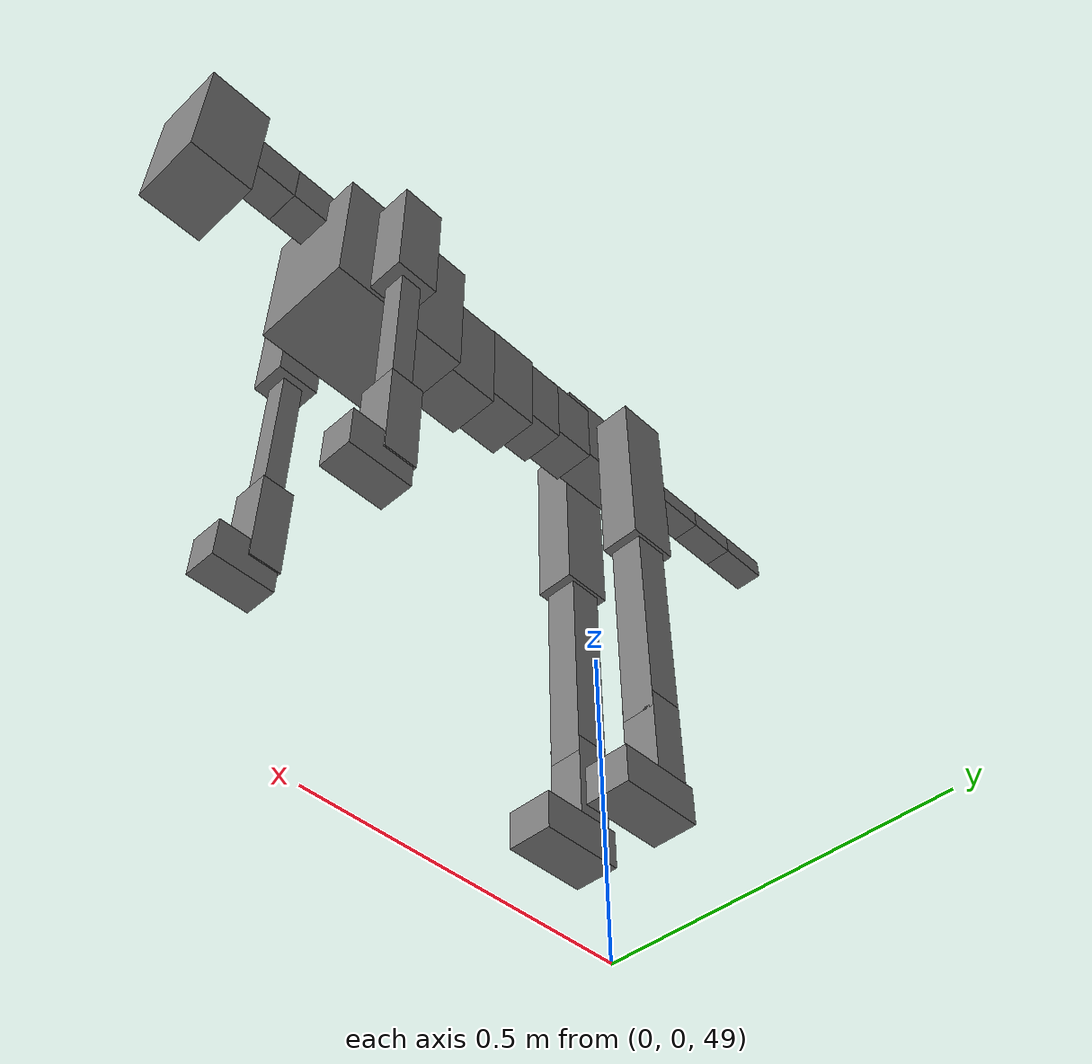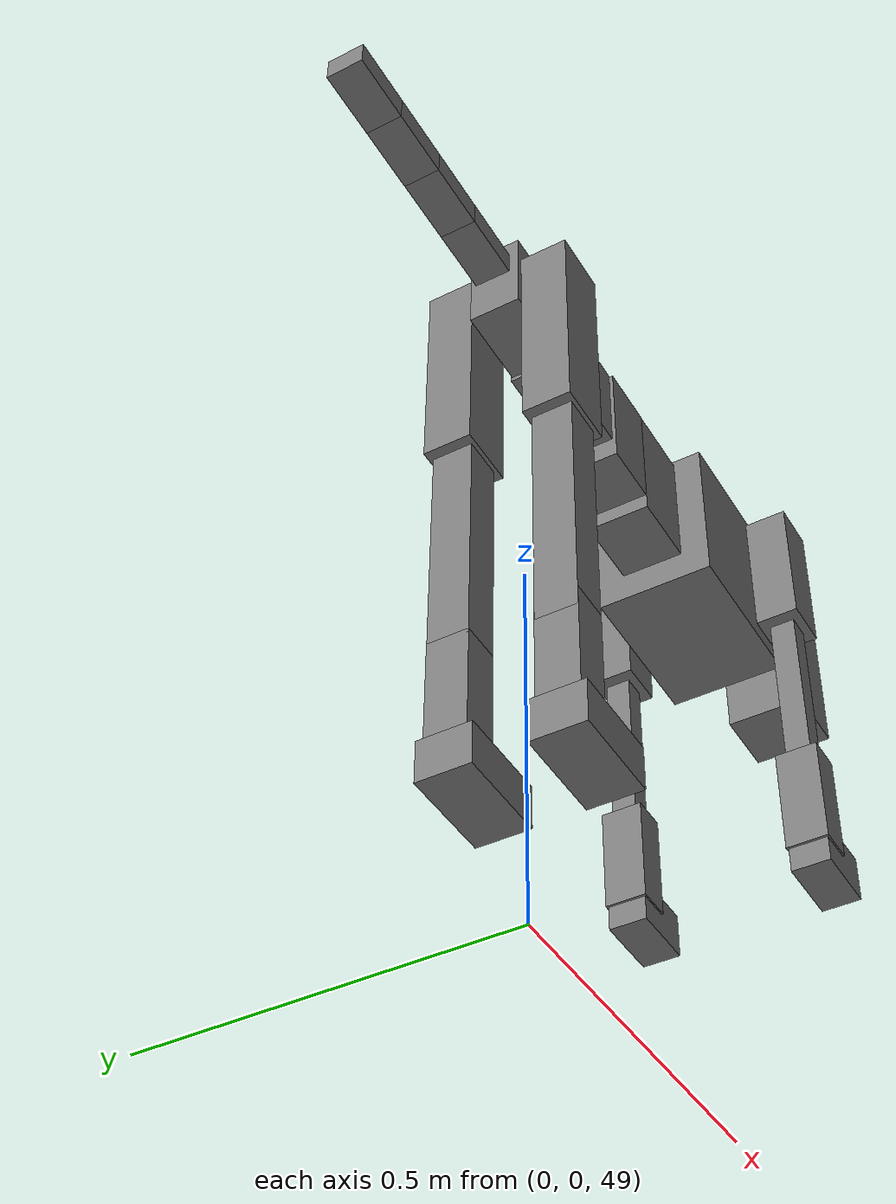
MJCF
<mujoco model="dog">

    <default>
        <joint armature="0.02" stiffness="1" damping="0.2" limited="true"/>
        <geom condim="3" friction="1 0.05 0.05" margin="0.01"/>
        <motor ctrllimited="true" ctrlrange="-1.0 1.0" forcelimited="true" gear="50"/>
    </default>

    <compiler inertiafromgeom="true" angle="radian"/>

    <option timestep="0.016" iterations="50" tolerance="1e-10" solver="Newton" jacobian="dense" cone="pyramidal"/>

    <size nconmax="20000" njmax="60000" nstack="5000000"/>
    <visual>
        <map force="0.1" zfar="30"/>
        <rgba haze="0.15 0.25 0.35 1"/>
        <quality shadowsize="2048"/>
        <global offwidth="800" offheight="800"/>
    </visual>

    <asset>
        <texture type="skybox" builtin="gradient" rgb1="0.3 0.5 0.7" rgb2="0 0 0" width="512" height="512"/>
        <texture name="texplane" type="2d" builtin="checker" rgb1=".2 .3 .4" rgb2=".1 0.15 0.2" width="512" height="512"
                 mark="cross" markrgb=".8 .8 .8"/>
        <texture name="texgeom" type="cube" builtin="flat" mark="cross" width="127" height="1278" rgb1="0.8 0.6 0.4"
                 rgb2="0.8 0.6 0.4" markrgb="1 1 1" random="0.01"/>

        <material name="matplane" reflectance="0.3" texture="texplane" texrepeat="1 1" texuniform="true"/>
        <material name="matgeom" texture="texgeom" texuniform="true" rgba="0.8 0.6 .4 1"/>
    </asset>

    <worldbody>
        <geom name="floor" pos="0 0 0" size="0 0 .25" type="plane" material="matplane" condim="3"/>

        <light directional="false" diffuse=".2 .2 .2" specular="0 0 0" pos="0 0 5" dir="0 0 -1" castshadow="false"/>
        <light mode="targetbodycom" target="torso" directional="false" diffuse=".8 .8 .8" specular="0.3 0.3 0.3"
               pos="0 0 4.0" dir="0 0 -1"/>

        <body name="root" pos="0 0 50">
            <freejoint name="root_1"/>
            <geom type="box" pos="0 0 -0.02" size="0.0774  0.0358  0.063" density="2030"/>

            <body name="spine1" pos="0.054 0 0">
                <joint name="spine1_y" axis="0 1 0" range="0 0.7" limited="true"/>
                <geom type="box" pos="0.02375 0 -0.03" size="0.04375  0.0375  0.05985" density="2030"/>

                <body name="spine2" pos="0.0612 0 0">
                    <joint name="spine2_y" axis="0 1 0" range="-0.15 0.15" limited="true"/>
                    <geom type="box" pos="0.03555  0  -0.04" size="0.04055  0.039  0.06615" density="2030"/>

                    <body name="spine3" pos="0.0730 0 0">
                        <joint name="spine3_y" axis="0 1 0" range="-0.15 0.15" limited="true"/>
                        <geom type="box" pos="0.03555  0  -0.057" size="0.04555  0.0445  0.081" density="2030"/>

                        <body name="spine4" pos="0.0780 0 0">
                            <joint name="spine4_y" axis="0 1 0" range="-0.15 0.15" limited="true"/>
                            <geom type="box" pos="0.05265  0  -0.07" size="0.05265  0.045  0.09135" density="2030"/>

                            <body name="torso" pos="0.1082 0 0">
                                <joint name="torso_y" axis="0 1 0" range="-0.15 0.15" limited="true"/>
                                <geom type="box" pos="0.11925  0  -0.085" size="0.11925  0.085  0.11745"
                                      density="2030"/>

                                <body name="neck1" pos="0.2160  0   0.0180">
                                    <joint name="neck1_y" axis="0 1 0" range="-1.2  -1" limited="true"/>
                                    <geom type="box" pos="0.0423  0  0" size="0.0423  0.03  0.036" density="2325"/>

                                    <body name="neck2" pos="0.0853  0  0">
                                        <joint name="neck2_y" axis="0 1 0" range="0.1  0" limited="true"/>
                                        <geom type="box" pos="0.0423  0  0" size="0.0423  0.03  0.036" density="2325"/>

                                        <body name="head" pos="0.0853  0  0">
                                            <joint name="head_y" axis="0 1 0" range="-0.3  -0.2" limited="true"/>
                                            <geom type="box" pos="0.0531  0  -0.055" size="0.0531  0.06  0.1044"
                                                  density="4030"/>

                                        </body>
                                    </body>
                                </body>

                                <body name="front_shoulder" pos="0.156  0   -0.0480">
                                    <joint name="front_shoulder_y" axis="0 1 0" range="-1 1.5" limited="true"/>
                                    <geom type="box" pos="0 0.13 -0.0720" size="0.0354  0.0303  0.0986" density="1158"/>
                                    <geom type="box" pos="0 -0.13 -0.0720" size="0.0354  0.0303  0.0986"
                                          density="1158"/>

                                    <body name="front_elbow" pos="0  0  -0.1440">
                                        <joint name="front_elbow_y" axis="0 1 0" range="-2 0" limited="true"/>
                                        <geom type="box" pos="0 0.13 -0.1382" size="0.0173  0.0177  0.1382"
                                              density="1081"/>
                                        <geom type="box" pos="0 -0.13 -0.1382" size="0.0173  0.0177  0.1382"
                                              density="1081"/>

                                        <body name="front_wrist" pos="0  0  -0.2763">
                                            <joint name="front_wrist_y" axis="0 1 0" range="-0.2 0" limited="true"/>
                                            <geom type="box" pos="0 0.13 -0.0632" size="0.0264  0.0294  0.0763"
                                                  density="1664"/>
                                            <geom type="box" pos="0 -0.13 -0.0632" size="0.0264  0.0294  0.0763"
                                                  density="1664"/>

                                            <body name="front_finger_end" pos="0  0  -0.1264">
                                                <joint name="front_finger_y" axis="0 1 0" range="-0.4 1"
                                                       limited="true"/>
                                                <geom type="box" pos="0.0272  0.13  -0.0168"
                                                      size="0.0499  0.0272  0.0318" density="1515"/>
                                                <geom type="box" pos="0.0272  -0.13  -0.0168"
                                                      size="0.0499  0.0272  0.0318" density="1515"/>

                                            </body>

                                        </body>
                                    </body>
                                </body>

                            </body>
                        </body>
                    </body>
                </body>
            </body>

            <body name="back_hip" pos="-0.03 0 -0.018">
                <joint name="back_hip_y" axis="0 1 0" range="-1.5 0.3" limited="true"/>
                <geom type="box" pos="0 0.07 -0.1303" size="0.0421  0.0330  0.1531" density="1154"/>
                <geom type="box" pos="0 -0.07 -0.1303" size="0.0421  0.0330  0.1531" density="1154"/>

                <body name="back_knee" pos="0  0  -0.2607">
                    <joint name="back_knee_y" axis="0 1 0" range="0 2.8" limited="true"/>
                    <geom type="box" pos="0 0.07 -0.1734" size="0.0280  0.0276  0.1890" density="1227"/>
                    <geom type="box" pos="0 -0.07 -0.1734" size="0.0280  0.0276  0.1890" density="1227"/>

                    <body name="back_ankle" pos="0  0  -0.3468">
                        <joint name="back_ankle_y" axis="0 1 0" range="-2.2 0" limited="true"/>
                        <geom type="box" pos="0 0.07 -0.0731" size="0.0280  0.0280  0.0843" density="1284"/>
                        <geom type="box" pos="0 -0.07 -0.0731" size="0.0280  0.0280  0.0843" density="1284"/>

                        <body name="back_toe_end" pos="0  0  -0.1462">
                            <joint name="back_toe_y" axis="0 1 0" range="-0.4 1" limited="true"/>
                            <geom type="box" pos="0.0362  0.07  -0.0145" size="0.0663  0.0362  0.0295" density="1515"/>
                            <geom type="box" pos="0.0362  -0.07  -0.0145" size="0.0663  0.0362  0.0295" density="1515"/>

                        </body>
                    </body>
                </body>
            </body>

            <body name="tail1" pos="-0.074 0 -0.006">
                <joint name="tail1_y" axis="0 1 0" range="-0.2 0.2" limited="true"/>
                <geom type="box" pos="-0.0536  0  0" size="0.045  0.025  0.0175" density="1587"/>

                <body name="tail2" pos="-0.09 0 0">
                    <joint name="tail2_y" axis="0 1 0" range="-0.2 0.2" limited="true"/>
                    <geom type="box" pos="-0.0536  0  0" size="0.045  0.025  0.0175" density="1587"/>

                    <body name="tail3" pos="-0.09 0 0">
                        <joint name="tail3_y" axis="0 1 0" range="-0.2 0.2" limited="true"/>
                        <geom type="box" pos="-0.0536  0  0" size="0.045  0.025  0.0175" density="1587"/>

                        <body name="tail4" pos="-0.09 0 0">
                            <joint name="tail4_y" axis="0 1 0" range="-0.2 0.2" limited="true"/>
                            <geom type="box" pos="-0.0536  0  0" size="0.045  0.025  0.0175" density="1587"/>

                        </body>
                    </body>
                </body>
            </body>
        </body>
    </worldbody>

    <actuator>
        <motor joint="spine1_y" forcerange="-150 150     "/>
        <motor joint="spine2_y" forcerange="-150 150     "/>
        <motor joint="spine3_y" forcerange="-150 150     "/>
        <motor joint="spine4_y" forcerange="-150 150     "/>
        <motor joint="torso_y" forcerange="-150 150     "/>
        <motor joint="neck1_y" forcerange="-100 100       "/>
        <motor joint="neck2_y" forcerange="-100 100       "/>
        <motor joint="head_y" forcerange="-150 150       "/>
        <motor joint="front_shoulder_y" forcerange="-195.45 106.54"/>
        <motor joint="front_elbow_y" forcerange="-108.78 119.81"/>
        <motor joint="front_wrist_y" forcerange="-133.90 101.02"/>
        <motor joint="front_finger_y" forcerange="-57.75 47.34"/>
        <motor joint="back_hip_y" forcerange="-260.96 379.03"/>
        <motor joint="back_knee_y" forcerange="-304.64 296.41"/>
        <motor joint="back_angle_y" forcerange="-212.42 134.93"/>
        <motor joint="back_toe_y" forcerange="-123.07 86.15"/>
        <motor joint="tail1_y" forcerange="-50 50     "/>
        <motor joint="tail2_y" forcerange="-50 50     "/>
        <motor joint="tail3_y" forcerange="-50 50     "/>
        <motor joint="tail4_y" forcerange="-50 50     "/>
    </actuator>
</mujoco>
